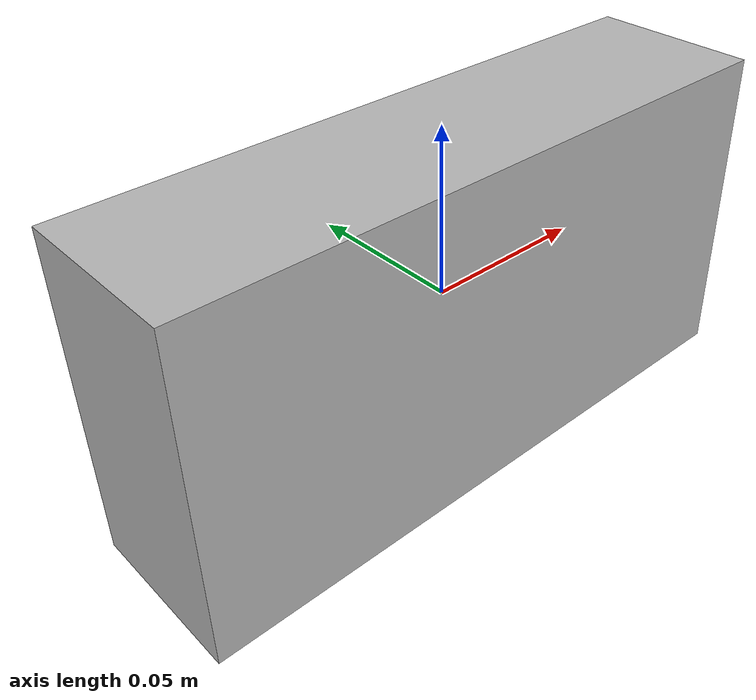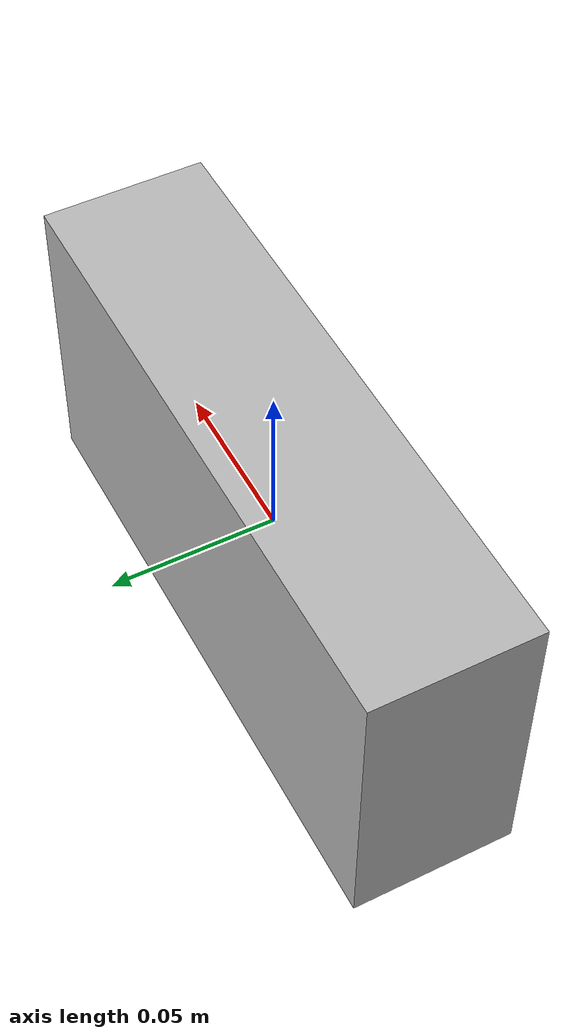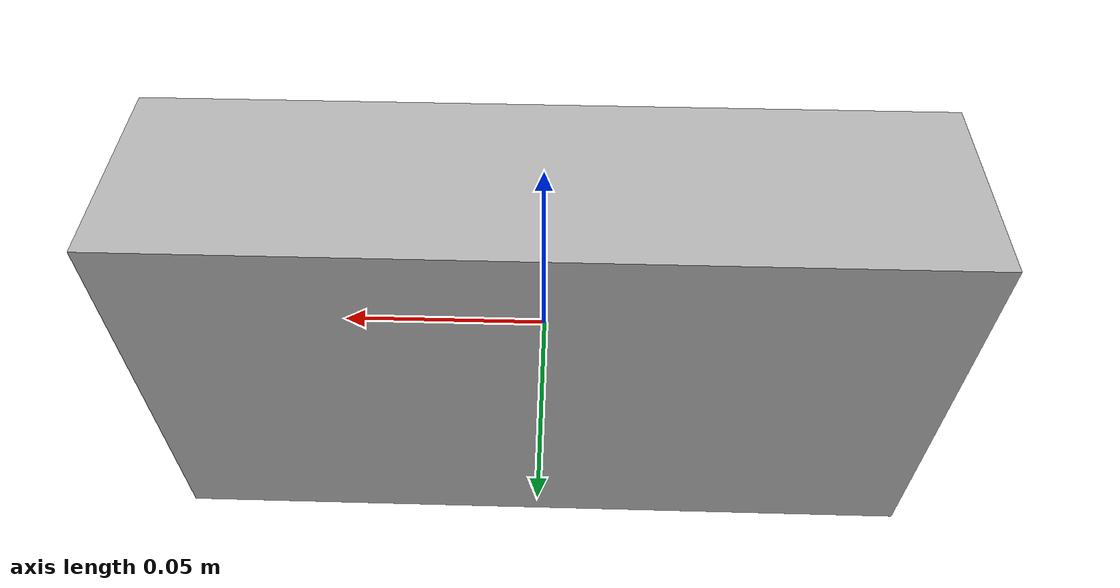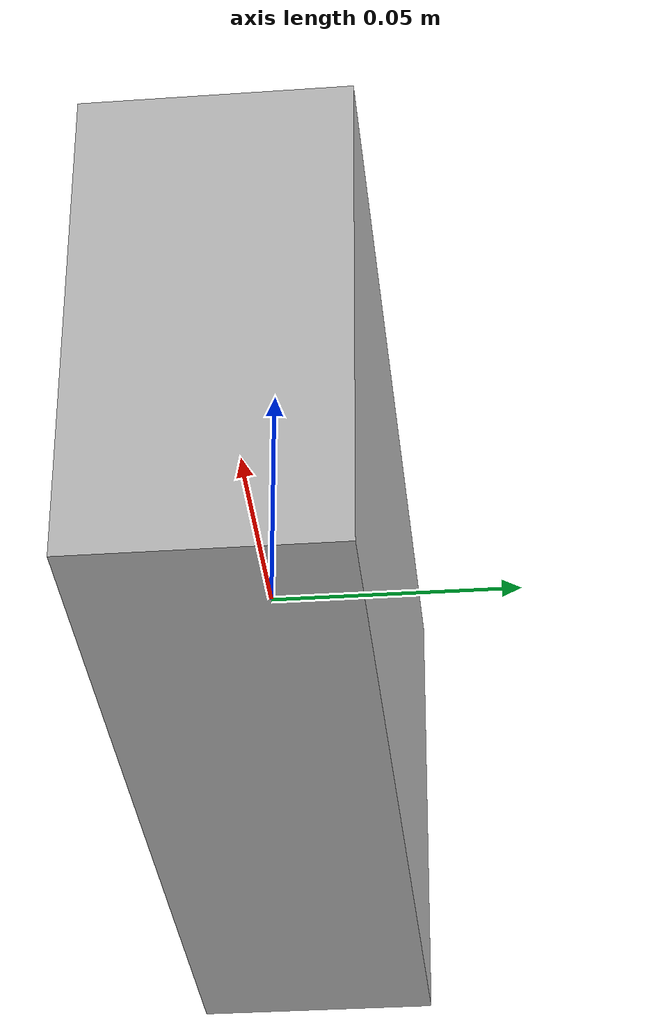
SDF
<?xml version="1.0" ?>
<sdf version="1.5">
  <model name="dbrick">
    <static>false</static>
    <self_collide>true</self_collide>
    <link name="link">
      <inertial>
        <mass>2.0</mass>
          <inertia>
            <ixx>1.984833e-2</ixx>
            <ixy>0.0</ixy>
            <ixz>0.0</ixz>
            <iyy>6.433333e-2</iyy>
            <iyz>0.0</iyz>
            <izz>7.584833e-2</izz>
          </inertia>
      </inertial>
      <collision name="dbrickC">
        <geometry>
          <box>
            <size>0.19 0.05 0.097</size>
          </box>
        </geometry>
      </collision>
      <visual name="dbrickV">
        <cast_shadows>false</cast_shadows>
        <geometry>
          <box>
            <size>0.19 0.05 0.097</size>
          </box>
        </geometry>
        <material>
          <script>
            <uri>model://dbrick/materials/scripts</uri>
            <uri>model://dbrick/materials/textures</uri>
            <name>vrc/dbrick</name>
          </script>
        </material>
      </visual>
    </link>
  </model>
</sdf>
